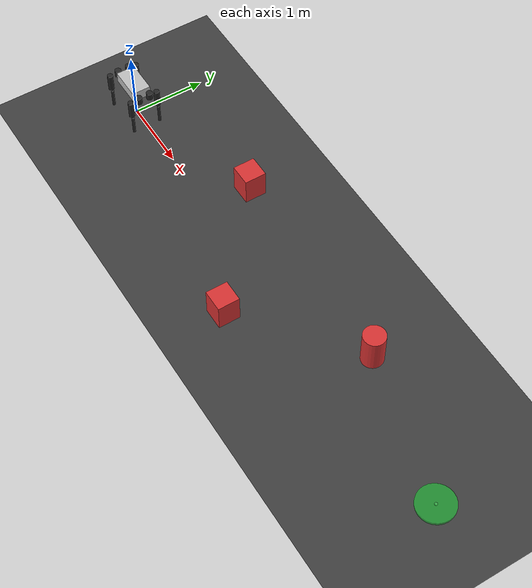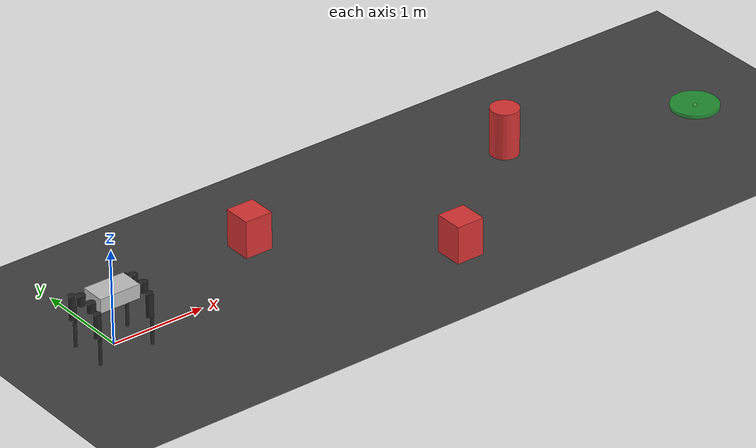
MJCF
<?xml version="1.0" ?>
<mujoco model="x30_pro">
  <compiler angle="radian" autolimits="true"/>

  <option timestep="0.002" gravity="0 0 -9.81" integrator="RK4"/>

  <default>
    <joint damping="0.5" armature="0.01" frictionloss="0.1"/>
    <geom friction="1.0 0.5 0.5" contype="1" conaffinity="1" condim="3"/>
  </default>

  <asset>
    <texture type="skybox" builtin="gradient" rgb1="0.6 0.7 0.9" rgb2="0.2 0.3 0.5" width="256" height="256"/>
    <texture name="grid" type="2d" builtin="checker" rgb1="0.2 0.2 0.2" rgb2="0.3 0.3 0.3" width="512" height="512"/>
    <material name="grid" texture="grid" texrepeat="8 8" reflectance="0.1"/>
    <material name="torso_mat" rgba="0.75 0.75 0.75 1"/>
    <material name="leg_mat" rgba="0.15 0.15 0.15 1"/>
    <material name="obstacle_mat" rgba="0.85 0.2 0.2 1"/>
    <material name="goal_mat" rgba="0.1 0.8 0.2 0.6"/>
  </asset>

  <worldbody>
    <light directional="true" diffuse="0.8 0.8 0.8" specular="0.2 0.2 0.2" pos="0 0 5" dir="0 0 -1"/>
    <geom name="floor" type="plane" size="20 20 0.1" material="grid"/>

    <!-- ============ X30 PRO BASE (planar mount, matches M20 Pro pattern) ============ -->
    <body name="x30_pro_base" pos="0 0 0.55">
      <joint name="base_slide_x" type="slide" axis="1 0 0" damping="5"/>
      <joint name="base_slide_y" type="slide" axis="0 1 0" damping="5"/>
      <joint name="base_hinge_yaw" type="hinge" axis="0 0 1" damping="5"/>
      <inertial pos="-0.0029257 0.0000075 0.020095" mass="30.7"
                fullinertia="0.364306 0.597627 0.757267 0.00018421 0.00027469 0.00026784"/>
      <geom name="base_geom" type="box" size="0.22 0.13 0.075" material="torso_mat"/>
      <site name="torso_site" pos="0 0 0" size="0.01"/>
      <site name="imu_site" pos="0 0 0" size="0.005"/>

      <!-- ============ FRONT LEFT (FL) ============ -->
      <body name="FL_HIP" pos="0.291 0.08 0">
        <joint name="FL_HipX" type="hinge" axis="-1 0 0" range="-0.323 0.323" damping="0.8"/>
        <inertial pos="-0.0018591 -0.011377 0.00027039" mass="1.43"
                  fullinertia="0.0014068 0.0026782 0.0015918 -0.000018545 0.0000027664 0.0000021221"/>
        <geom name="FL_hip_geom" type="cylinder" size="0.045 0.05" rgba="0.15 0.15 0.15 1"/>
        <body name="FL_THIGH" pos="0 0.11675 0">
          <joint name="FL_HipY" type="hinge" axis="0 -1 0" range="-2.967 0.262" damping="0.8"/>
          <inertial pos="-0.0087581 -0.023554 -0.055162" mass="4.0809"
                    fullinertia="0.012604 0.0164 0.0061084 0.00020291 -0.00030875 0.00036593"/>
          <geom name="FL_thigh_geom" type="cylinder" size="0.04 0.125" pos="-0.02 0 -0.13" material="leg_mat"/>
          <body name="FL_SHANK" pos="0 0 -0.30">
            <joint name="FL_Knee" type="hinge" axis="0 -1 0" range="0.349 2.531" damping="0.5"/>
            <inertial pos="0.014851 0.000021 -0.12283" mass="0.71386"
                      fullinertia="0.0093039 0.0096272 0.00041542 0.00000017693 0.00034843 -0.0000037717"/>
            <geom name="FL_shank_geom" type="cylinder" size="0.02 0.14" pos="0 0 -0.12" material="leg_mat"/>
            <geom name="FL_foot_geom" type="sphere" size="0.03" pos="0 0 -0.30" friction="1.2 0.5 0.5"/>
          </body>
        </body>
      </body>

      <!-- ============ FRONT RIGHT (FR) ============ -->
      <body name="FR_HIP" pos="0.291 -0.08 0">
        <joint name="FR_HipX" type="hinge" axis="-1 0 0" range="-0.323 0.323" damping="0.8"/>
        <inertial pos="-0.0018591 0.011377 0.00027039" mass="1.43"
                  fullinertia="0.0014068 0.0026782 0.0015918 0.000018545 0.0000027664 -0.0000021221"/>
        <geom name="FR_hip_geom" type="cylinder" size="0.045 0.05" rgba="0.15 0.15 0.15 1"/>
        <body name="FR_THIGH" pos="0 -0.11675 0">
          <joint name="FR_HipY" type="hinge" axis="0 -1 0" range="-2.967 0.262" damping="0.8"/>
          <inertial pos="-0.0087581 0.023554 -0.055162" mass="4.0809"
                    fullinertia="0.012604 0.0164 0.0061084 -0.00020291 -0.00030875 -0.00036593"/>
          <geom name="FR_thigh_geom" type="cylinder" size="0.04 0.125" pos="-0.02 0 -0.13" material="leg_mat"/>
          <body name="FR_SHANK" pos="0 0 -0.30">
            <joint name="FR_Knee" type="hinge" axis="0 -1 0" range="0.349 2.531" damping="0.5"/>
            <inertial pos="0.014851 -0.000021 -0.12283" mass="0.71386"
                      fullinertia="0.0093039 0.0096272 0.00041542 -0.00000017693 0.00034843 0.0000037717"/>
            <geom name="FR_shank_geom" type="cylinder" size="0.02 0.14" pos="0 0 -0.12" material="leg_mat"/>
            <geom name="FR_foot_geom" type="sphere" size="0.03" pos="0 0 -0.30" friction="1.2 0.5 0.5"/>
          </body>
        </body>
      </body>

      <!-- ============ HIND LEFT (HL) ============ -->
      <body name="HL_HIP" pos="-0.291 0.08 0">
        <joint name="HL_HipX" type="hinge" axis="-1 0 0" range="-0.323 0.323" damping="0.8"/>
        <inertial pos="0.0018591 -0.011377 0.00027039" mass="1.43"
                  fullinertia="0.0014068 0.0026782 0.0015918 0.000018545 -0.0000027664 0.0000021221"/>
        <geom name="HL_hip_geom" type="cylinder" size="0.045 0.05" rgba="0.15 0.15 0.15 1"/>
        <body name="HL_THIGH" pos="0 0.11675 0">
          <joint name="HL_HipY" type="hinge" axis="0 -1 0" range="-2.967 0.262" damping="0.8"/>
          <inertial pos="-0.0087581 -0.023554 -0.055162" mass="4.0809"
                    fullinertia="0.012604 0.0164 0.0061084 0.00020291 -0.00030875 0.00036593"/>
          <geom name="HL_thigh_geom" type="cylinder" size="0.04 0.125" pos="-0.02 0 -0.13" material="leg_mat"/>
          <body name="HL_SHANK" pos="0 0 -0.30">
            <joint name="HL_Knee" type="hinge" axis="0 -1 0" range="0.349 2.531" damping="0.5"/>
            <inertial pos="0.014851 0.000021 -0.12283" mass="0.71386"
                      fullinertia="0.0093039 0.0096272 0.00041542 0.00000017693 0.00034843 -0.0000037717"/>
            <geom name="HL_shank_geom" type="cylinder" size="0.02 0.14" pos="0 0 -0.12" material="leg_mat"/>
            <geom name="HL_foot_geom" type="sphere" size="0.03" pos="0 0 -0.30" friction="1.2 0.5 0.5"/>
          </body>
        </body>
      </body>

      <!-- ============ HIND RIGHT (HR) ============ -->
      <body name="HR_HIP" pos="-0.291 -0.08 0">
        <joint name="HR_HipX" type="hinge" axis="-1 0 0" range="-0.323 0.323" damping="0.8"/>
        <inertial pos="0.0018591 0.011377 0.00027039" mass="1.43"
                  fullinertia="0.0014068 0.0026782 0.0015918 -0.000018545 -0.0000027664 -0.0000021221"/>
        <geom name="HR_hip_geom" type="cylinder" size="0.045 0.05" rgba="0.15 0.15 0.15 1"/>
        <body name="HR_THIGH" pos="0 -0.11675 0">
          <joint name="HR_HipY" type="hinge" axis="0 -1 0" range="-2.967 0.262" damping="0.8"/>
          <inertial pos="-0.0087581 0.023554 -0.055162" mass="4.0809"
                    fullinertia="0.012604 0.0164 0.0061084 -0.00020291 -0.00030875 -0.00036593"/>
          <geom name="HR_thigh_geom" type="cylinder" size="0.04 0.125" pos="-0.02 0 -0.13" material="leg_mat"/>
          <body name="HR_SHANK" pos="0 0 -0.30">
            <joint name="HR_Knee" type="hinge" axis="0 -1 0" range="0.349 2.531" damping="0.5"/>
            <inertial pos="0.014851 -0.000021 -0.12283" mass="0.71386"
                      fullinertia="0.0093039 0.0096272 0.00041542 -0.00000017693 0.00034843 0.0000037717"/>
            <geom name="HR_shank_geom" type="cylinder" size="0.02 0.14" pos="0 0 -0.12" material="leg_mat"/>
            <geom name="HR_foot_geom" type="sphere" size="0.03" pos="0 0 -0.30" friction="1.2 0.5 0.5"/>
          </body>
        </body>
      </body>

    </body>

    <!-- ============ OBSTACLE COURSE (for obstacle-nav skill) ============ -->
    <body name="obstacle_1" pos="2.0 0.6 0.2">
      <geom name="obstacle_1_geom" type="box" size="0.15 0.15 0.2" material="obstacle_mat"/>
    </body>
    <body name="obstacle_2" pos="3.5 -0.7 0.2">
      <geom name="obstacle_2_geom" type="box" size="0.15 0.15 0.2" material="obstacle_mat"/>
    </body>
    <body name="obstacle_3" pos="5.0 0.5 0.25">
      <geom name="obstacle_3_geom" type="cylinder" size="0.15 0.25" material="obstacle_mat"/>
    </body>

    <!-- Goal marker: obstacle-nav success requires reaching this pose -->
    <body name="goal_marker" pos="7.0 0.0 0.05">
      <geom name="goal_geom" type="cylinder" size="0.25 0.02" material="goal_mat" contype="0" conaffinity="0"/>
      <site name="goal_site" pos="0 0 0" size="0.02"/>
    </body>

  </worldbody>

  <!-- ============ ACTUATORS ============ -->
  <!-- Base: velocity actuators driving the planar mount (matches M20 Pro pattern) -->
  <actuator>
    <velocity name="base_vx" joint="base_slide_x" ctrlrange="0 1.5" kv="50"/>
    <velocity name="base_vy" joint="base_slide_y" ctrlrange="-0.5 0.5" kv="50"/>
    <velocity name="base_wz" joint="base_hinge_yaw" ctrlrange="-1.0 1.0" kv="20"/>

    <!-- Legs: position actuators, one per joint, limits match URDF effort/range -->
    <position name="FL_hip_act" joint="FL_HipX" kp="60" ctrlrange="-0.323 0.323"/>
    <position name="FL_thigh_act" joint="FL_HipY" kp="60" ctrlrange="-2.967 0.262"/>
    <position name="FL_calf_act" joint="FL_Knee" kp="80" ctrlrange="0.349 2.531"/>

    <position name="FR_hip_act" joint="FR_HipX" kp="60" ctrlrange="-0.323 0.323"/>
    <position name="FR_thigh_act" joint="FR_HipY" kp="60" ctrlrange="-2.967 0.262"/>
    <position name="FR_calf_act" joint="FR_Knee" kp="80" ctrlrange="0.349 2.531"/>

    <position name="HL_hip_act" joint="HL_HipX" kp="60" ctrlrange="-0.323 0.323"/>
    <position name="HL_thigh_act" joint="HL_HipY" kp="60" ctrlrange="-2.967 0.262"/>
    <position name="HL_calf_act" joint="HL_Knee" kp="80" ctrlrange="0.349 2.531"/>

    <position name="HR_hip_act" joint="HR_HipX" kp="60" ctrlrange="-0.323 0.323"/>
    <position name="HR_thigh_act" joint="HR_HipY" kp="60" ctrlrange="-2.967 0.262"/>
    <position name="HR_calf_act" joint="HR_Knee" kp="80" ctrlrange="0.349 2.531"/>
  </actuator>

  <sensor>
    <framepos name="torso_pos" objtype="site" objname="torso_site"/>
    <framequat name="torso_quat" objtype="site" objname="torso_site"/>
    <framepos name="goal_pos" objtype="site" objname="goal_site"/>
  </sensor>

</mujoco>
